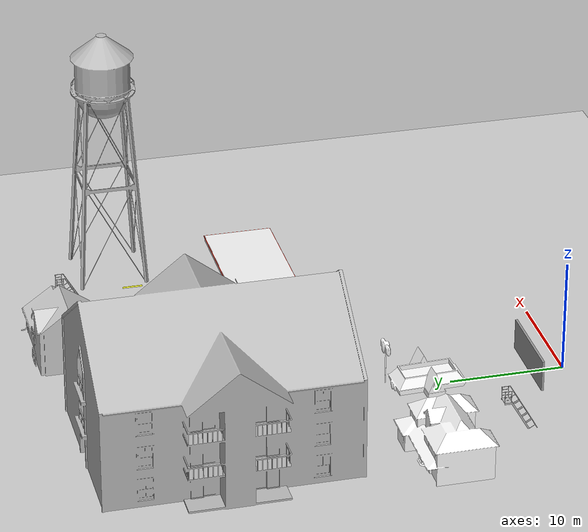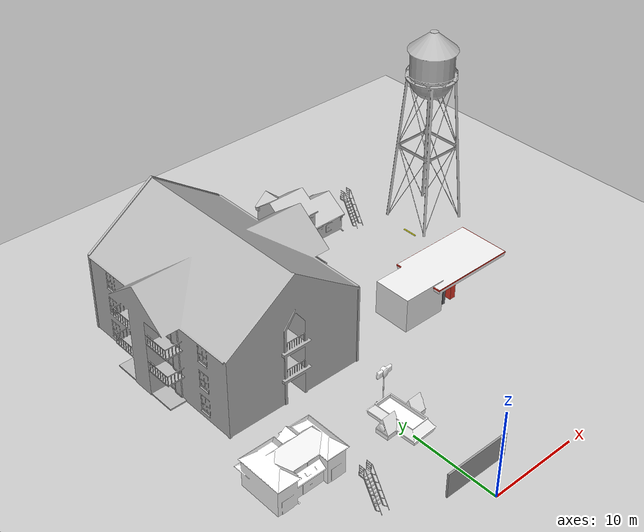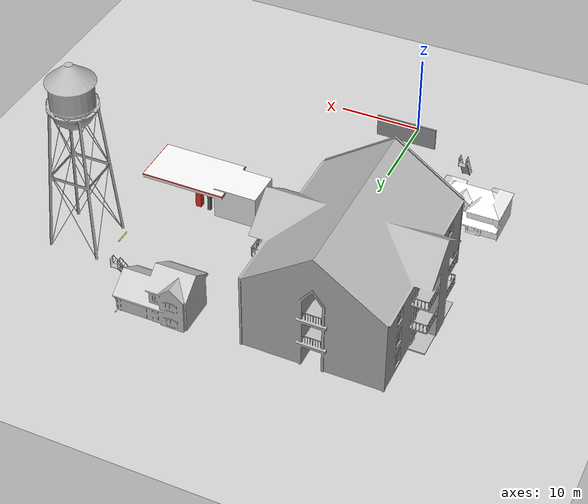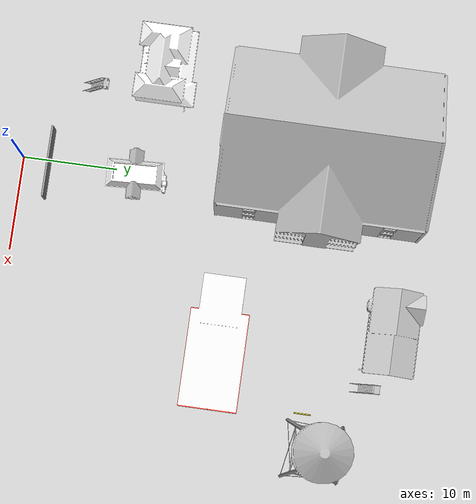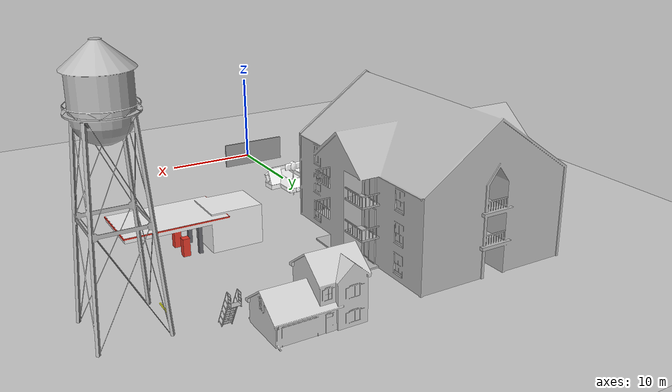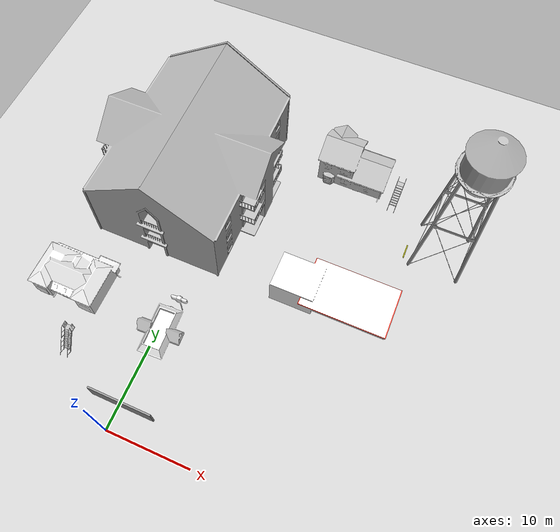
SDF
<sdf version="1.6">
 <world name="default">
  <light name="sun" type="directional">
   <pose>0 0 10 0 -0 0</pose>
   <diffuse>0.8 0.8 0.8 1</diffuse>
   <specular>0.1 0.1 0.1 1</specular>
   <attenuation>
    <range>1000</range>
    <constant>0.9</constant>
    <linear>0.01</linear>
    <quadratic>0.001</quadratic>
   </attenuation>
   <direction>-0.5 0.5 -1</direction>
  </light>
  <model name="ground_plane">
   <static>1</static>
   <link name="link">
    <collision name="collision">
     <geometry><plane><normal>0 0 1</normal><size>100 100</size></plane></geometry>
     <surface><friction><ode><mu>100</mu><mu2>50</mu2></ode></friction></surface>
    </collision>
    <visual name="visual">
     <cast_shadows>0</cast_shadows>
     <geometry><plane><normal>0 0 1</normal><size>100 100</size></plane></geometry>
     <material>
      <script><uri>file://media/materials/scripts/gazebo.material</uri><name>Gazebo/Grey</name></script>
     </material>
    </visual>
   </link>
  </model>
  <gravity>0 0 -9.8</gravity>
  <magnetic_field>6e-06 2.3e-05 -4.2e-05</magnetic_field>
  <atmosphere type="adiabatic"/>
  <physics name="default_physics" default="0" type="ode">
   <max_step_size>0.001</max_step_size>
   <real_time_factor>1</real_time_factor>
   <real_time_update_rate>1000</real_time_update_rate>
  </physics>
  <scene><ambient>0.4 0.4 0.4 1</ambient><background>0.7 0.7 0.7 1</background><shadows>1</shadows></scene>
  <spherical_coordinates>
   <surface_model>EARTH_WGS84</surface_model>
   <latitude_deg>0</latitude_deg>
   <longitude_deg>0</longitude_deg>
   <elevation>0</elevation>
   <heading_deg>0</heading_deg>
  </spherical_coordinates>
  <model name="grey_wall">
   <static>1</static>
   <link name="link">
    <pose>0 0 1.4 0 -0 0</pose>
    <collision name="collision"><geometry><box><size>7.5 0.2 2.8</size></box></geometry></collision>
    <visual name="visual">
     <cast_shadows>0</cast_shadows>
     <geometry><box><size>7.5 0.2 2.8</size></box></geometry>
     <material>
      <script>
       <uri>model://grey_wall/materials/scripts</uri>
       <uri>model://grey_wall/materials/textures</uri>
       <name>vrc/grey_wall</name>
      </script>
     </material>
    </visual>
   </link>
   <pose>0.497033 2.88204 0 0 -0 0</pose>
  </model>
  <model name="Fast Food">
   <static>1</static>
   <link name="link">
    <collision name="collision">
     <geometry><mesh><uri>model://fast_food/meshes/fast_food.dae</uri><scale>1 1 1</scale></mesh></geometry>
    </collision>
    <visual name="visual">
     <geometry><mesh><uri>model://fast_food/meshes/fast_food.dae</uri><scale>1 1 1</scale></mesh></geometry>
     <material>
      <script>
       <uri>model://fast_food/materials/scripts</uri>
       <uri>model://fast_food/materials/textures</uri>
       <name>FastFood/Diffuse</name>
      </script>
     </material>
    </visual>
   </link>
   <pose>0.349575 11.9781 0 0 -0 1.61533</pose>
  </model>
  <model name="ladder">
   <static>1</static>
   <link name="link">
    <collision name="step0">
     <pose>0 -0.96703 0.286 0 -0 0</pose>
     <geometry><box><size>0.9 0.1016 0.0381</size></box></geometry>
    </collision>
    <collision name="step1">
     <pose>0 -0.79106 0.59054 0 -0 0</pose>
     <geometry><box><size>0.9 0.1016 0.0381</size></box></geometry>
    </collision>
    <collision name="step2">
     <pose>0 -0.61509 0.89508 0 -0 0</pose>
     <geometry><box><size>0.9 0.1016 0.0381</size></box></geometry>
    </collision>
    <collision name="step3">
     <pose>0 -0.43912 1.19962 0 -0 0</pose>
     <geometry><box><size>0.9 0.1016 0.0381</size></box></geometry>
    </collision>
    <collision name="step4">
     <pose>0 -0.26315 1.50416 0 -0 0</pose>
     <geometry><box><size>0.9 0.1016 0.0381</size></box></geometry>
    </collision>
    <collision name="step5">
     <pose>0 -0.08718 1.8087 0 -0 0</pose>
     <geometry><box><size>0.9 0.1016 0.0381</size></box></geometry>
    </collision>
    <collision name="step6">
     <pose>0 0.08879 2.11324 0 -0 0</pose>
     <geometry><box><size>0.9 0.1016 0.0381</size></box></geometry>
    </collision>
    <collision name="step7">
     <pose>0 0.26476 2.41778 0 -0 0</pose>
     <geometry><box><size>0.9 0.1016 0.0381</size></box></geometry>
    </collision>
    <collision name="landing">
     <pose>0 0.73039 2.72432 0 -0 0</pose>
     <geometry><box><size>0.9 0.6096 0.0381</size></box></geometry>
    </collision>
    <collision name="left_side_wall">
     <pose>-0.43217 -0.37451 1.3386 1.0472 -0 0</pose>
     <geometry><box><size>0.0508 3.16758 0.13</size></box></geometry>
    </collision>
    <collision name="left_side_landing_wall">
     <pose>-0.43217 0.69819 2.667 0 -0 0</pose>
     <geometry><box><size>0.0508 0.67401 0.1524</size></box></geometry>
    </collision>
    <collision name="left_railing_landing_3">
     <pose>-0.433355 0.66933 3.81 1.5707 -0 0</pose>
     <geometry><cylinder><radius>0.02413</radius><length>0.73172</length></cylinder></geometry>
    </collision>
    <collision name="left_railing_landing_2">
     <pose>-0.433355 0.73166 3.5433 1.5707 -0 0</pose>
     <geometry><cylinder><radius>0.02413</radius><length>0.5588</length></cylinder></geometry>
    </collision>
    <collision name="left_railing_landing_1">
     <pose>-0.433355 0.73166 3.2766 1.5707 -0 0</pose>
     <geometry><cylinder><radius>0.02413</radius><length>0.5588</length></cylinder></geometry>
    </collision>
    <collision name="left_railing_landing_0">
     <pose>-0.433355 0.73166 3.0099 1.5707 -0 0</pose>
     <geometry><cylinder><radius>0.02413</radius><length>0.5588</length></cylinder></geometry>
    </collision>
    <collision name="left_railing_landing_upright_back">
     <pose>-0.433355 1.01088 3.2766 0 -0 0</pose>
     <geometry><cylinder><radius>0.02413</radius><length>1.0668</length></cylinder></geometry>
    </collision>
    <collision name="left_railing_landing_upright_front">
     <pose>-0.433355 0.45208 3.2766 0 -0 0</pose>
     <geometry><cylinder><radius>0.02413</radius><length>1.0668</length></cylinder></geometry>
    </collision>
    <collision name="left_railing_upright_4">
     <pose>-0.433355 0.0699 2.80986 1.03414 -0 0</pose>
     <geometry><cylinder><radius>0.02413</radius><length>0.57</length></cylinder></geometry>
    </collision>
    <collision name="left_railing_upright_3">
     <pose>-0.433355 -0.31006 2.15169 1.03414 -0 0</pose>
     <geometry><cylinder><radius>0.02413</radius><length>0.57</length></cylinder></geometry>
    </collision>
    <collision name="left_railing_upright_2">
     <pose>-0.433355 -0.6911 1.49172 1.03414 -0 0</pose>
     <geometry><cylinder><radius>0.02413</radius><length>0.57</length></cylinder></geometry>
    </collision>
    <collision name="left_railing_upright_1">
     <pose>-0.433355 -1.0732 0.82995 1.03414 -0 0</pose>
     <geometry><cylinder><radius>0.02413</radius><length>0.57</length></cylinder></geometry>
    </collision>
    <collision name="left_railing_upright_0">
     <pose>-0.433355 -1.45316 0.17179 1.03414 -0 0</pose>
     <geometry><cylinder><radius>0.02413</radius><length>0.57</length></cylinder></geometry>
    </collision>
    <collision name="left_railing_long">
     <pose>-0.433355 -0.781 1.9068 -0.523503 0 0</pose>
     <geometry><cylinder><radius>0.02413</radius><length>4.42295</length></cylinder></geometry>
    </collision>
    <collision name="right_side_wall">
     <pose>0.43217 -0.37451 1.3386 1.0472 -0 0</pose>
     <geometry><box><size>0.0508 3.16758 0.13</size></box></geometry>
    </collision>
    <collision name="right_side_landing_wall">
     <pose>0.43217 0.69819 2.667 0 -0 0</pose>
     <geometry><box><size>0.0508 0.67401 0.1524</size></box></geometry>
    </collision>
    <collision name="right_railing_landing_3">
     <pose>0.433355 0.66933 3.81 1.5707 -0 0</pose>
     <geometry><cylinder><radius>0.02413</radius><length>0.73172</length></cylinder></geometry>
    </collision>
    <collision name="right_railing_landing_2">
     <pose>0.433355 0.73166 3.5433 1.5707 -0 0</pose>
     <geometry><cylinder><radius>0.02413</radius><length>0.5588</length></cylinder></geometry>
    </collision>
    <collision name="right_railing_landing_1">
     <pose>0.433355 0.73166 3.2766 1.5707 -0 0</pose>
     <geometry><cylinder><radius>0.02413</radius><length>0.5588</length></cylinder></geometry>
    </collision>
    <collision name="right_railing_landing_0">
     <pose>0.433355 0.73166 3.0099 1.5707 -0 0</pose>
     <geometry><cylinder><radius>0.02413</radius><length>0.5588</length></cylinder></geometry>
    </collision>
    <collision name="right_railing_landing_upright_back">
     <pose>0.433355 1.01088 3.2766 0 -0 0</pose>
     <geometry><cylinder><radius>0.02413</radius><length>1.0668</length></cylinder></geometry>
    </collision>
    <collision name="right_railing_landing_upright_front">
     <pose>0.433355 0.45208 3.2766 0 -0 0</pose>
     <geometry><cylinder><radius>0.02413</radius><length>1.0668</length></cylinder></geometry>
    </collision>
    <collision name="right_railing_upright_4">
     <pose>0.433355 0.0699 2.80986 1.03414 -0 0</pose>
     <geometry><cylinder><radius>0.02413</radius><length>0.57</length></cylinder></geometry>
    </collision>
    <collision name="right_railing_upright_3">
     <pose>0.433355 -0.31006 2.15169 1.03414 -0 0</pose>
     <geometry><cylinder><radius>0.02413</radius><length>0.57</length></cylinder></geometry>
    </collision>
    <collision name="right_railing_upright_2">
     <pose>0.433355 -0.6911 1.49172 1.03414 -0 0</pose>
     <geometry><cylinder><radius>0.02413</radius><length>0.57</length></cylinder></geometry>
    </collision>
    <collision name="right_railing_upright_1">
     <pose>0.433355 -1.0732 0.82995 1.03414 -0 0</pose>
     <geometry><cylinder><radius>0.02413</radius><length>0.57</length></cylinder></geometry>
    </collision>
    <collision name="right_railing_upright_0">
     <pose>0.433355 -1.45316 0.17179 1.03414 -0 0</pose>
     <geometry><cylinder><radius>0.02413</radius><length>0.57</length></cylinder></geometry>
    </collision>
    <collision name="right_railing_long">
     <pose>0.433355 -0.781 1.9068 -0.523503 0 0</pose>
     <geometry><cylinder><radius>0.02413</radius><length>4.42295</length></cylinder></geometry>
    </collision>
    <visual name="visual">
     <geometry><mesh><uri>model://drc_practice_ladder/meshes/ladder.dae</uri><scale>1 1 1</scale></mesh></geometry>
    </visual>
   </link>
   <pose>-8.35541 7.03599 0 0 -0 0</pose>
  </model>
  <model name="House 2">
   <static>1</static>
   <link name="link">
    <collision name="collision">
     <geometry><mesh><uri>model://house_2/meshes/house_2.dae</uri><scale>1 1 1</scale></mesh></geometry>
    </collision>
    <visual name="visual">
     <geometry><mesh><uri>model://house_2/meshes/house_2.dae</uri><scale>1 1 1</scale></mesh></geometry>
     <material>
      <script>
       <uri>model://house_2/materials/scripts</uri>
       <uri>model://house_2/materials/textures</uri>
       <name>House_2/Diffuse</name>
      </script>
     </material>
    </visual>
   </link>
   <pose>-12.1708 13.3944 0 0 -0 0</pose>
  </model>
  <model name="Gas Station">
   <static>1</static>
   <link name="link">
    <collision name="collision">
     <geometry><mesh><uri>model://gas_station/meshes/gas_station.dae</uri><scale>1 1 1</scale></mesh></geometry>
    </collision>
    <visual name="visual">
     <geometry><mesh><uri>model://gas_station/meshes/gas_station.dae</uri><scale>1 1 1</scale></mesh></geometry>
     <material>
      <script>
       <uri>model://gas_station/materials/scripts</uri>
       <uri>model://gas_station/materials/textures</uri>
       <name>GasStation/Diffuse</name>
      </script>
      <shader type="normal_map_object_space"><normal_map>GasStation_Normal.png</normal_map></shader>
     </material>
    </visual>
   </link>
   <pose>16.4069 22.9972 0 0 -0 0</pose>
  </model>
  <model name="House 3_clone_1">
   <static>1</static>
   <link name="link">
    <collision name="collision">
     <geometry><mesh><uri>model://house_3/meshes/house_3.dae</uri><scale>1 1 1</scale></mesh></geometry>
    </collision>
    <visual name="visual">
     <geometry><mesh><uri>model://house_3/meshes/house_3.dae</uri><scale>1 1 1</scale></mesh></geometry>
     <material>
      <script>
       <uri>model://house_3/materials/scripts</uri>
       <uri>model://house_3/materials/textures</uri>
       <name>House_3/Diffuse</name>
      </script>
     </material>
    </visual>
   </link>
   <pose>13.8144 41 0 0 -0 0</pose>
  </model>
  <model name="ladder_0">
   <static>1</static>
   <link name="link">
    <collision name="step0">
     <pose>0 -0.96703 0.286 0 -0 0</pose>
     <geometry><box><size>0.9 0.1016 0.0381</size></box></geometry>
    </collision>
    <collision name="step1">
     <pose>0 -0.79106 0.59054 0 -0 0</pose>
     <geometry><box><size>0.9 0.1016 0.0381</size></box></geometry>
    </collision>
    <collision name="step2">
     <pose>0 -0.61509 0.89508 0 -0 0</pose>
     <geometry><box><size>0.9 0.1016 0.0381</size></box></geometry>
    </collision>
    <collision name="step3">
     <pose>0 -0.43912 1.19962 0 -0 0</pose>
     <geometry><box><size>0.9 0.1016 0.0381</size></box></geometry>
    </collision>
    <collision name="step4">
     <pose>0 -0.26315 1.50416 0 -0 0</pose>
     <geometry><box><size>0.9 0.1016 0.0381</size></box></geometry>
    </collision>
    <collision name="step5">
     <pose>0 -0.08718 1.8087 0 -0 0</pose>
     <geometry><box><size>0.9 0.1016 0.0381</size></box></geometry>
    </collision>
    <collision name="step6">
     <pose>0 0.08879 2.11324 0 -0 0</pose>
     <geometry><box><size>0.9 0.1016 0.0381</size></box></geometry>
    </collision>
    <collision name="step7">
     <pose>0 0.26476 2.41778 0 -0 0</pose>
     <geometry><box><size>0.9 0.1016 0.0381</size></box></geometry>
    </collision>
    <collision name="landing">
     <pose>0 0.73039 2.72432 0 -0 0</pose>
     <geometry><box><size>0.9 0.6096 0.0381</size></box></geometry>
    </collision>
    <collision name="left_side_wall">
     <pose>-0.43217 -0.37451 1.3386 1.0472 -0 0</pose>
     <geometry><box><size>0.0508 3.16758 0.13</size></box></geometry>
    </collision>
    <collision name="left_side_landing_wall">
     <pose>-0.43217 0.69819 2.667 0 -0 0</pose>
     <geometry><box><size>0.0508 0.67401 0.1524</size></box></geometry>
    </collision>
    <collision name="left_railing_landing_3">
     <pose>-0.433355 0.66933 3.81 1.5707 -0 0</pose>
     <geometry><cylinder><radius>0.02413</radius><length>0.73172</length></cylinder></geometry>
    </collision>
    <collision name="left_railing_landing_2">
     <pose>-0.433355 0.73166 3.5433 1.5707 -0 0</pose>
     <geometry><cylinder><radius>0.02413</radius><length>0.5588</length></cylinder></geometry>
    </collision>
    <collision name="left_railing_landing_1">
     <pose>-0.433355 0.73166 3.2766 1.5707 -0 0</pose>
     <geometry><cylinder><radius>0.02413</radius><length>0.5588</length></cylinder></geometry>
    </collision>
    <collision name="left_railing_landing_0">
     <pose>-0.433355 0.73166 3.0099 1.5707 -0 0</pose>
     <geometry><cylinder><radius>0.02413</radius><length>0.5588</length></cylinder></geometry>
    </collision>
    <collision name="left_railing_landing_upright_back">
     <pose>-0.433355 1.01088 3.2766 0 -0 0</pose>
     <geometry><cylinder><radius>0.02413</radius><length>1.0668</length></cylinder></geometry>
    </collision>
    <collision name="left_railing_landing_upright_front">
     <pose>-0.433355 0.45208 3.2766 0 -0 0</pose>
     <geometry><cylinder><radius>0.02413</radius><length>1.0668</length></cylinder></geometry>
    </collision>
    <collision name="left_railing_upright_4">
     <pose>-0.433355 0.0699 2.80986 1.03414 -0 0</pose>
     <geometry><cylinder><radius>0.02413</radius><length>0.57</length></cylinder></geometry>
    </collision>
    <collision name="left_railing_upright_3">
     <pose>-0.433355 -0.31006 2.15169 1.03414 -0 0</pose>
     <geometry><cylinder><radius>0.02413</radius><length>0.57</length></cylinder></geometry>
    </collision>
    <collision name="left_railing_upright_2">
     <pose>-0.433355 -0.6911 1.49172 1.03414 -0 0</pose>
     <geometry><cylinder><radius>0.02413</radius><length>0.57</length></cylinder></geometry>
    </collision>
    <collision name="left_railing_upright_1">
     <pose>-0.433355 -1.0732 0.82995 1.03414 -0 0</pose>
     <geometry><cylinder><radius>0.02413</radius><length>0.57</length></cylinder></geometry>
    </collision>
    <collision name="left_railing_upright_0">
     <pose>-0.433355 -1.45316 0.17179 1.03414 -0 0</pose>
     <geometry><cylinder><radius>0.02413</radius><length>0.57</length></cylinder></geometry>
    </collision>
    <collision name="left_railing_long">
     <pose>-0.433355 -0.781 1.9068 -0.523503 0 0</pose>
     <geometry><cylinder><radius>0.02413</radius><length>4.42295</length></cylinder></geometry>
    </collision>
    <collision name="right_side_wall">
     <pose>0.43217 -0.37451 1.3386 1.0472 -0 0</pose>
     <geometry><box><size>0.0508 3.16758 0.13</size></box></geometry>
    </collision>
    <collision name="right_side_landing_wall">
     <pose>0.43217 0.69819 2.667 0 -0 0</pose>
     <geometry><box><size>0.0508 0.67401 0.1524</size></box></geometry>
    </collision>
    <collision name="right_railing_landing_3">
     <pose>0.433355 0.66933 3.81 1.5707 -0 0</pose>
     <geometry><cylinder><radius>0.02413</radius><length>0.73172</length></cylinder></geometry>
    </collision>
    <collision name="right_railing_landing_2">
     <pose>0.433355 0.73166 3.5433 1.5707 -0 0</pose>
     <geometry><cylinder><radius>0.02413</radius><length>0.5588</length></cylinder></geometry>
    </collision>
    <collision name="right_railing_landing_1">
     <pose>0.433355 0.73166 3.2766 1.5707 -0 0</pose>
     <geometry><cylinder><radius>0.02413</radius><length>0.5588</length></cylinder></geometry>
    </collision>
    <collision name="right_railing_landing_0">
     <pose>0.433355 0.73166 3.0099 1.5707 -0 0</pose>
     <geometry><cylinder><radius>0.02413</radius><length>0.5588</length></cylinder></geometry>
    </collision>
    <collision name="right_railing_landing_upright_back">
     <pose>0.433355 1.01088 3.2766 0 -0 0</pose>
     <geometry><cylinder><radius>0.02413</radius><length>1.0668</length></cylinder></geometry>
    </collision>
    <collision name="right_railing_landing_upright_front">
     <pose>0.433355 0.45208 3.2766 0 -0 0</pose>
     <geometry><cylinder><radius>0.02413</radius><length>1.0668</length></cylinder></geometry>
    </collision>
    <collision name="right_railing_upright_4">
     <pose>0.433355 0.0699 2.80986 1.03414 -0 0</pose>
     <geometry><cylinder><radius>0.02413</radius><length>0.57</length></cylinder></geometry>
    </collision>
    <collision name="right_railing_upright_3">
     <pose>0.433355 -0.31006 2.15169 1.03414 -0 0</pose>
     <geometry><cylinder><radius>0.02413</radius><length>0.57</length></cylinder></geometry>
    </collision>
    <collision name="right_railing_upright_2">
     <pose>0.433355 -0.6911 1.49172 1.03414 -0 0</pose>
     <geometry><cylinder><radius>0.02413</radius><length>0.57</length></cylinder></geometry>
    </collision>
    <collision name="right_railing_upright_1">
     <pose>0.433355 -1.0732 0.82995 1.03414 -0 0</pose>
     <geometry><cylinder><radius>0.02413</radius><length>0.57</length></cylinder></geometry>
    </collision>
    <collision name="right_railing_upright_0">
     <pose>0.433355 -1.45316 0.17179 1.03414 -0 0</pose>
     <geometry><cylinder><radius>0.02413</radius><length>0.57</length></cylinder></geometry>
    </collision>
    <collision name="right_railing_long">
     <pose>0.433355 -0.781 1.9068 -0.523503 0 0</pose>
     <geometry><cylinder><radius>0.02413</radius><length>4.42295</length></cylinder></geometry>
    </collision>
    <visual name="visual">
     <geometry><mesh><uri>model://drc_practice_ladder/meshes/ladder.dae</uri><scale>1 1 1</scale></mesh></geometry>
    </visual>
   </link>
   <pose>19.4899 39.305 0 0 -0 0</pose>
  </model>
  <model name="drc_practice_yellow_parking_block">
   <static>1</static>
   <link name="link">
    <visual name="visual">
     <geometry>
      <mesh><uri>model://drc_practice_yellow_parking_block/meshes/block.dae</uri><scale>1 1 1</scale></mesh>
     </geometry>
    </visual>
    <collision name="collision">
     <geometry>
      <mesh><uri>model://drc_practice_yellow_parking_block/meshes/block.dae</uri><scale>1 1 1</scale></mesh>
     </geometry>
    </collision>
   </link>
   <pose>22.9008 32.8777 0 0 -0 0</pose>
  </model>
  <model name="apartment">
   <static>1</static>
   <link name="link">
    <collision name="collision">
     <geometry><mesh><uri>model://apartment/meshes/apartment.dae</uri><scale>1 1 1</scale></mesh></geometry>
    </collision>
    <visual name="visual">
     <geometry><mesh><uri>model://apartment/meshes/apartment.dae</uri><scale>1 1 1</scale></mesh></geometry>
    </visual>
   </link>
   <pose>-4.6403 31.7198 0 0 -0 0</pose>
  </model>
  <model name="water_tower">
   <static>1</static>
   <link name="link">
    <collision name="collision">
     <geometry><mesh><uri>model://water_tower/meshes/water_tower.dae</uri><scale>1 1 1</scale></mesh></geometry>
    </collision>
    <visual name="visual">
     <geometry><mesh><uri>model://water_tower/meshes/water_tower.dae</uri><scale>1 1 1</scale></mesh></geometry>
    </visual>
   </link>
   <pose>26.6337 34.353 0 0 -0 0</pose>
  </model>
 </world>
</sdf>
